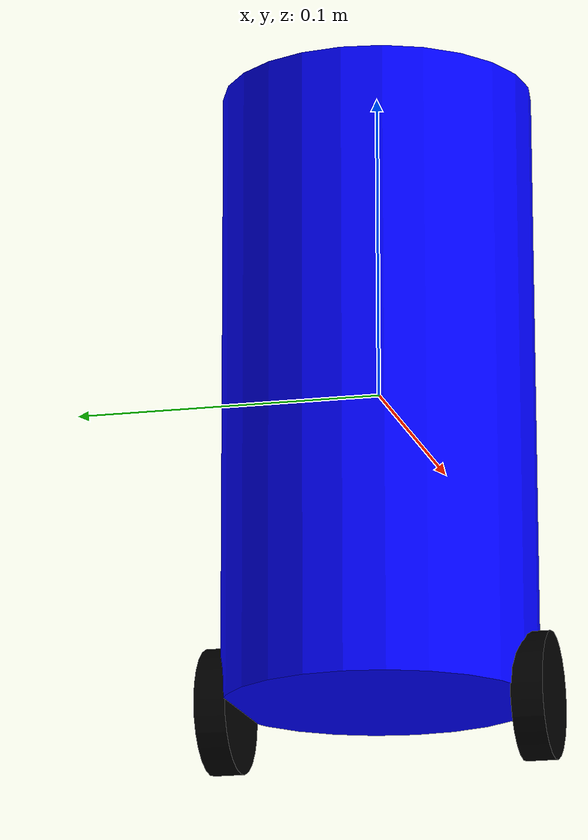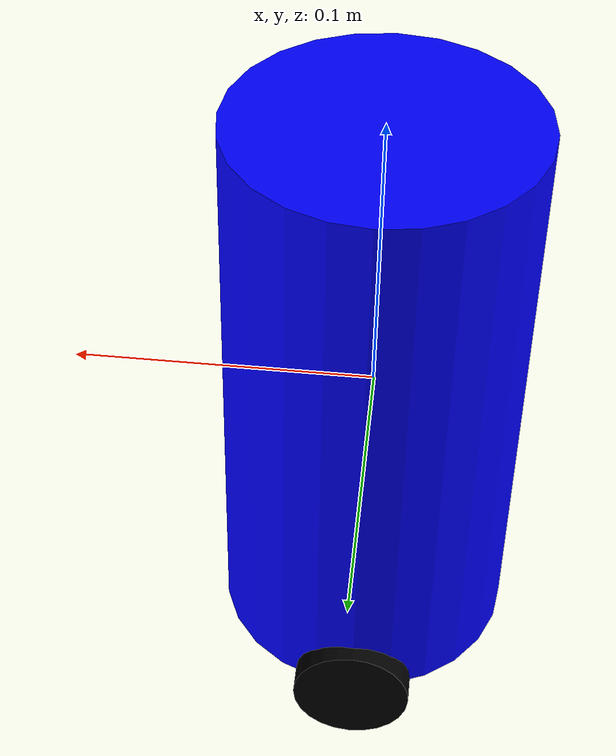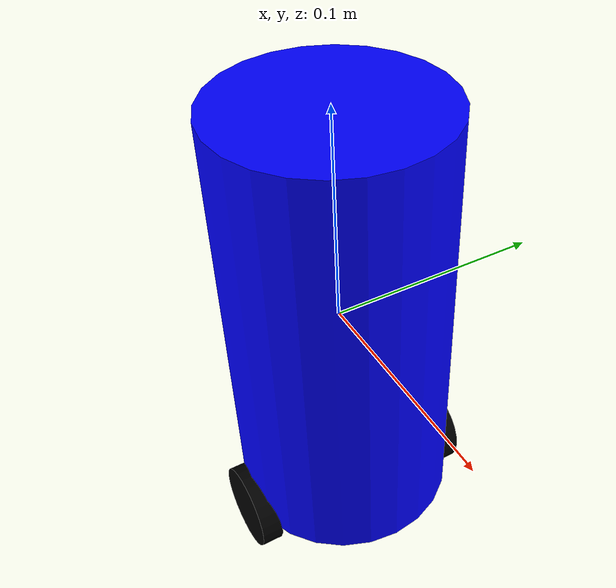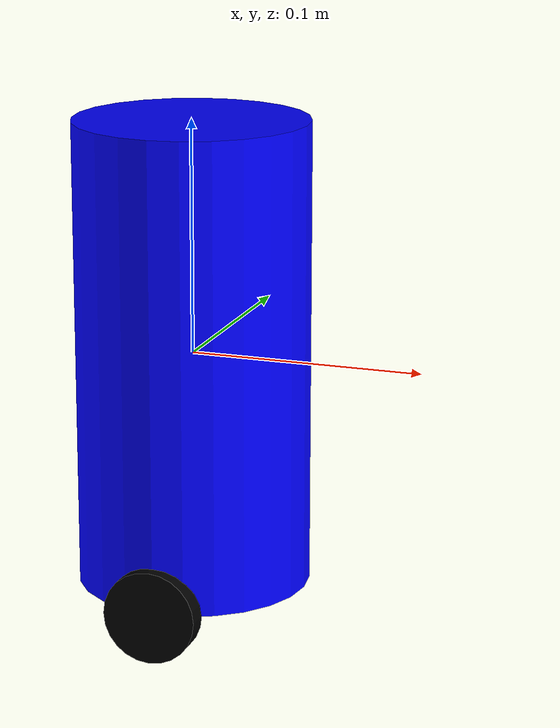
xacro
<?xml version="1.0" ?>
<!-- |    This document was autogenerated by xacro from mod_five.urdf                  | -->
<!-- |    EDITING THIS FILE BY HAND IS NOT RECOMMENDED                                 | -->
<robot name="mod_five">
  <link name="base_link">
    <visual>
      <geometry>
        <cylinder length="0.2" radius="0.05"/>
      </geometry>
      <material name="blue">
        <color rgba="0 0 1 1"/>
      </material>
    </visual>
    <collision>
      <geometry>
        <cylinder length="0.2" radius="0.05"/>
      </geometry>
    </collision>
    <inertial>
      <mass value="1.0"/>
      <origin xyz="0 0 0"/>
      <inertia ixx="0.0025" ixy="0" ixz="0" iyy="0.0025" iyz="0" izz="0.0008"/>
    </inertial>
  </link>
  <link name="left_wheel">
    <visual>
      <geometry>
        <cylinder length="0.01" radius="0.02"/>
      </geometry>
      <origin rpy="1.57075 0 0" xyz="0 0 0"/>
      <material name="black">
        <color rgba="0 0 0 1"/>
      </material>
    </visual>
    <collision>
      <geometry>
        <cylinder length="0.01" radius="0.02"/>
      </geometry>
    </collision>
    <inertial>
      <mass value="0.1"/>
      <origin rpy="1.57075 0 0" xyz="0 0 0"/>
      <inertia ixx="0.0001" ixy="0" ixz="0" iyy="0.0001" iyz="0" izz="0.00005"/>
    </inertial>
  </link>
  <link name="right_wheel">
    <visual>
      <geometry>
        <cylinder length="0.01" radius="0.02"/>
      </geometry>
      <origin rpy="1.57075 0 0" xyz="0 0 0"/>
      <material name="black">
        <color rgba="0 0 0 1"/>
      </material>
    </visual>
    <collision>
      <geometry>
        <cylinder length="0.01" radius="0.02"/>
      </geometry>
    </collision>
    <inertial>
      <mass value="0.1"/>
      <origin rpy="1.57075 0 0" xyz="0 0 0"/>
      <inertia ixx="0.0001" ixy="0" ixz="0" iyy="0.0001" iyz="0" izz="0.00005"/>
    </inertial>
  </link>
  <joint name="left_wheel_joint" type="continuous">
    <parent link="base_link"/>
    <child link="left_wheel"/>
    <origin rpy="0 0 0" xyz="0 0.05 -0.1"/>
    <axis xyz="0 1 0"/>
  </joint>
  <joint name="right_wheel_joint" type="continuous">
    <parent link="base_link"/>
    <child link="right_wheel"/>
    <origin rpy="0 0 0" xyz="0 -0.05 -0.1"/>
    <axis xyz="0 1 0"/>
  </joint>
</robot>
